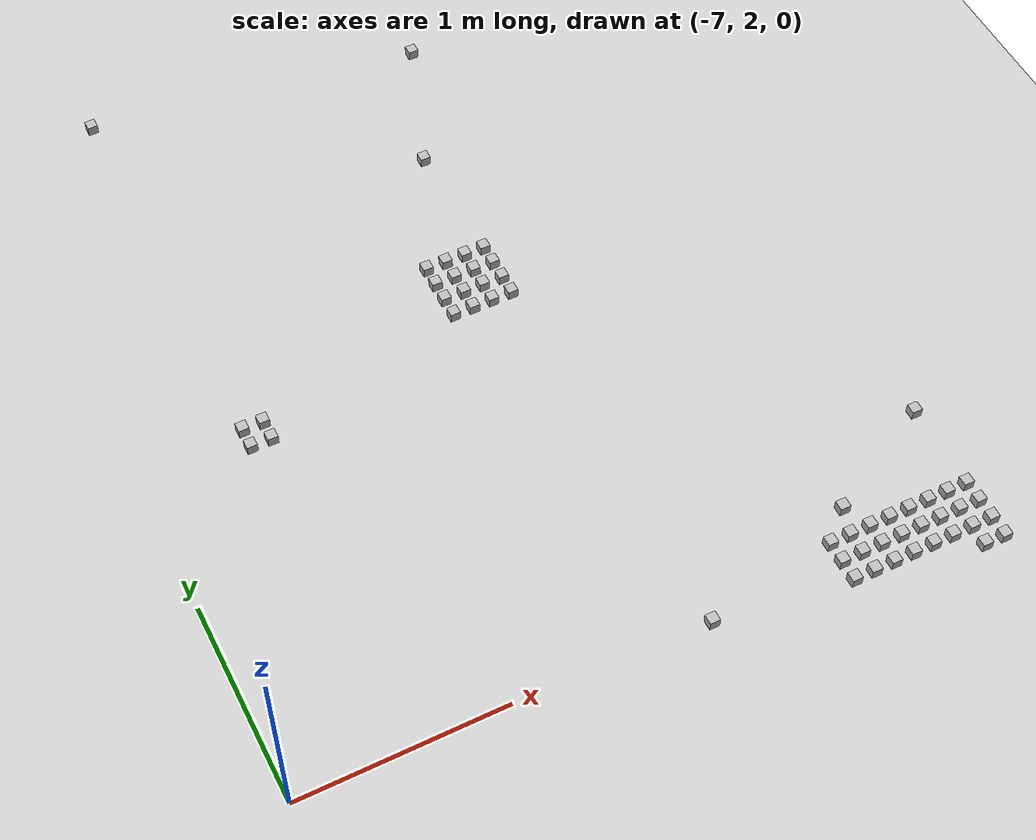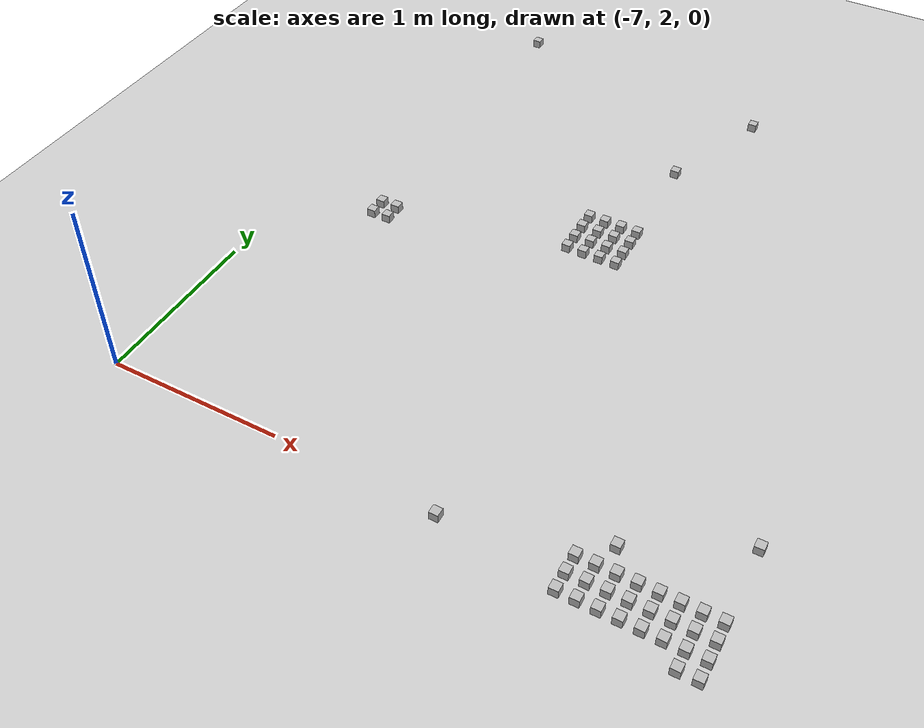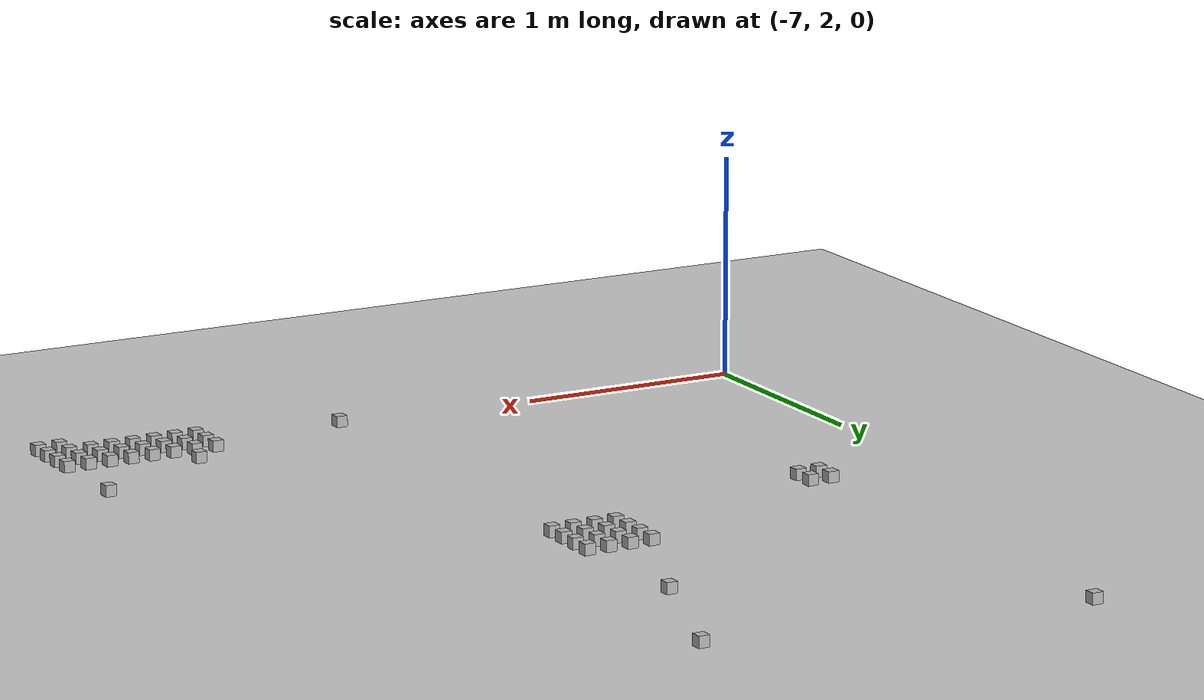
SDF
<sdf version="1.6">
 <world name="default">
  <model name="ground_plane">
   <static>1</static>
   <link name="link">
    <collision name="collision">
     <geometry><plane><normal>0 0 1</normal><size>100 100</size></plane></geometry>
     <surface><friction><ode><mu>100</mu><mu2>50</mu2></ode></friction></surface>
    </collision>
    <visual name="visual">
     <cast_shadows>0</cast_shadows>
     <geometry><plane><normal>0 0 1</normal><size>100 100</size></plane></geometry>
     <material>
      <script><uri>file://media/materials/scripts/gazebo.material</uri><name>Gazebo/Grey</name></script>
     </material>
    </visual>
   </link>
  </model>
  <model name="at38">
   <static>0</static>
   <link name="link">
    <inertial>
     <mass>0.01</mass>
     <inertia><ixx>4e-05</ixx><ixy>0</ixy><ixz>0</ixz><iyy>4e-05</iyy><iyz>0</iyz><izz>4e-05</izz></inertia>
    </inertial>
    <visual name="visual">
     <geometry><box><size>0.05 0.05 0.05</size></box></geometry>
     <material>
      <script>
       <uri>model://at0/materials/scripts</uri>
       <uri>model://at0/materials/textures</uri>
       <name>at0/Diffuse</name>
      </script>
     </material>
    </visual>
    <collision name="collision">
     <geometry><box><size>0.05 0.05 0.05</size></box></geometry>
     <surface><friction><ode><mu>0.8</mu><mu2>0.7</mu2></ode></friction></surface>
    </collision>
   </link>
   <pose>-3.82244 1.77302 0.025 0 -2e-06 0</pose>
  </model>
  <model name="at39">
   <static>0</static>
   <link name="link">
    <inertial>
     <mass>0.01</mass>
     <inertia><ixx>4e-05</ixx><ixy>0</ixy><ixz>0</ixz><iyy>4e-05</iyy><iyz>0</iyz><izz>4e-05</izz></inertia>
    </inertial>
    <visual name="visual">
     <geometry><box><size>0.05 0.05 0.05</size></box></geometry>
     <material>
      <script>
       <uri>model://at0/materials/scripts</uri>
       <uri>model://at0/materials/textures</uri>
       <name>at0/Diffuse</name>
      </script>
     </material>
    </visual>
    <collision name="collision">
     <geometry><box><size>0.05 0.05 0.05</size></box></geometry>
     <surface><friction><ode><mu>0.8</mu><mu2>0.7</mu2></ode></friction></surface>
    </collision>
   </link>
   <pose>-3.72244 1.77302 0.02499 0 2e-06 0</pose>
  </model>
  <model name="at40">
   <static>0</static>
   <link name="link">
    <inertial>
     <mass>0.01</mass>
     <inertia><ixx>4e-05</ixx><ixy>0</ixy><ixz>0</ixz><iyy>4e-05</iyy><iyz>0</iyz><izz>4e-05</izz></inertia>
    </inertial>
    <visual name="visual">
     <geometry><box><size>0.05 0.05 0.05</size></box></geometry>
     <material>
      <script>
       <uri>model://at0/materials/scripts</uri>
       <uri>model://at0/materials/textures</uri>
       <name>at0/Diffuse</name>
      </script>
     </material>
    </visual>
    <collision name="collision">
     <geometry><box><size>0.05 0.05 0.05</size></box></geometry>
     <surface><friction><ode><mu>0.8</mu><mu2>0.7</mu2></ode></friction></surface>
    </collision>
   </link>
   <pose>-4.42244 1.87302 0.02499 0 2e-06 0</pose>
  </model>
  <model name="at41">
   <static>0</static>
   <link name="link">
    <inertial>
     <mass>0.01</mass>
     <inertia><ixx>4e-05</ixx><ixy>0</ixy><ixz>0</ixz><iyy>4e-05</iyy><iyz>0</iyz><izz>4e-05</izz></inertia>
    </inertial>
    <visual name="visual">
     <geometry><box><size>0.05 0.05 0.05</size></box></geometry>
     <material>
      <script>
       <uri>model://at0/materials/scripts</uri>
       <uri>model://at0/materials/textures</uri>
       <name>at0/Diffuse</name>
      </script>
     </material>
    </visual>
    <collision name="collision">
     <geometry><box><size>0.05 0.05 0.05</size></box></geometry>
     <surface><friction><ode><mu>0.8</mu><mu2>0.7</mu2></ode></friction></surface>
    </collision>
   </link>
   <pose>-4.32244 1.87302 0.02499 0 2e-06 0</pose>
  </model>
  <model name="at42">
   <static>0</static>
   <link name="link">
    <inertial>
     <mass>0.01</mass>
     <inertia><ixx>4e-05</ixx><ixy>0</ixy><ixz>0</ixz><iyy>4e-05</iyy><iyz>0</iyz><izz>4e-05</izz></inertia>
    </inertial>
    <visual name="visual">
     <geometry><box><size>0.05 0.05 0.05</size></box></geometry>
     <material>
      <script>
       <uri>model://at0/materials/scripts</uri>
       <uri>model://at0/materials/textures</uri>
       <name>at0/Diffuse</name>
      </script>
     </material>
    </visual>
    <collision name="collision">
     <geometry><box><size>0.05 0.05 0.05</size></box></geometry>
     <surface><friction><ode><mu>0.8</mu><mu2>0.7</mu2></ode></friction></surface>
    </collision>
   </link>
   <pose>-4.22244 1.87302 0.02499 0 2e-06 0</pose>
  </model>
  <model name="at43">
   <static>0</static>
   <link name="link">
    <inertial>
     <mass>0.01</mass>
     <inertia><ixx>4e-05</ixx><ixy>0</ixy><ixz>0</ixz><iyy>4e-05</iyy><iyz>0</iyz><izz>4e-05</izz></inertia>
    </inertial>
    <visual name="visual">
     <geometry><box><size>0.05 0.05 0.05</size></box></geometry>
     <material>
      <script>
       <uri>model://at0/materials/scripts</uri>
       <uri>model://at0/materials/textures</uri>
       <name>at0/Diffuse</name>
      </script>
     </material>
    </visual>
    <collision name="collision">
     <geometry><box><size>0.05 0.05 0.05</size></box></geometry>
     <surface><friction><ode><mu>0.8</mu><mu2>0.7</mu2></ode></friction></surface>
    </collision>
   </link>
   <pose>-4.12244 1.87302 0.02499 0 2e-06 0</pose>
  </model>
  <model name="at44">
   <static>0</static>
   <link name="link">
    <inertial>
     <mass>0.01</mass>
     <inertia><ixx>4e-05</ixx><ixy>0</ixy><ixz>0</ixz><iyy>4e-05</iyy><iyz>0</iyz><izz>4e-05</izz></inertia>
    </inertial>
    <visual name="visual">
     <geometry><box><size>0.05 0.05 0.05</size></box></geometry>
     <material>
      <script>
       <uri>model://at0/materials/scripts</uri>
       <uri>model://at0/materials/textures</uri>
       <name>at0/Diffuse</name>
      </script>
     </material>
    </visual>
    <collision name="collision">
     <geometry><box><size>0.05 0.05 0.05</size></box></geometry>
     <surface><friction><ode><mu>0.8</mu><mu2>0.7</mu2></ode></friction></surface>
    </collision>
   </link>
   <pose>-4.02244 1.87302 0.02499 0 2e-06 0</pose>
  </model>
  <model name="at45">
   <static>0</static>
   <link name="link">
    <inertial>
     <mass>0.01</mass>
     <inertia><ixx>4e-05</ixx><ixy>0</ixy><ixz>0</ixz><iyy>4e-05</iyy><iyz>0</iyz><izz>4e-05</izz></inertia>
    </inertial>
    <visual name="visual">
     <geometry><box><size>0.05 0.05 0.05</size></box></geometry>
     <material>
      <script>
       <uri>model://at0/materials/scripts</uri>
       <uri>model://at0/materials/textures</uri>
       <name>at0/Diffuse</name>
      </script>
     </material>
    </visual>
    <collision name="collision">
     <geometry><box><size>0.05 0.05 0.05</size></box></geometry>
     <surface><friction><ode><mu>0.8</mu><mu2>0.7</mu2></ode></friction></surface>
    </collision>
   </link>
   <pose>-3.92244 1.87302 0.02499 0 2e-06 0</pose>
  </model>
  <model name="at46">
   <static>0</static>
   <link name="link">
    <inertial>
     <mass>0.01</mass>
     <inertia><ixx>4e-05</ixx><ixy>0</ixy><ixz>0</ixz><iyy>4e-05</iyy><iyz>0</iyz><izz>4e-05</izz></inertia>
    </inertial>
    <visual name="visual">
     <geometry><box><size>0.05 0.05 0.05</size></box></geometry>
     <material>
      <script>
       <uri>model://at0/materials/scripts</uri>
       <uri>model://at0/materials/textures</uri>
       <name>at0/Diffuse</name>
      </script>
     </material>
    </visual>
    <collision name="collision">
     <geometry><box><size>0.05 0.05 0.05</size></box></geometry>
     <surface><friction><ode><mu>0.8</mu><mu2>0.7</mu2></ode></friction></surface>
    </collision>
   </link>
   <pose>-3.82244 1.87302 0.025 0 -2e-06 0</pose>
  </model>
  <model name="at47">
   <static>0</static>
   <link name="link">
    <inertial>
     <mass>0.01</mass>
     <inertia><ixx>4e-05</ixx><ixy>0</ixy><ixz>0</ixz><iyy>4e-05</iyy><iyz>0</iyz><izz>4e-05</izz></inertia>
    </inertial>
    <visual name="visual">
     <geometry><box><size>0.05 0.05 0.05</size></box></geometry>
     <material>
      <script>
       <uri>model://at0/materials/scripts</uri>
       <uri>model://at0/materials/textures</uri>
       <name>at0/Diffuse</name>
      </script>
     </material>
    </visual>
    <collision name="collision">
     <geometry><box><size>0.05 0.05 0.05</size></box></geometry>
     <surface><friction><ode><mu>0.8</mu><mu2>0.7</mu2></ode></friction></surface>
    </collision>
   </link>
   <pose>-3.72244 1.87302 0.025 0 -2e-06 0</pose>
  </model>
  <model name="at48">
   <static>0</static>
   <link name="link">
    <inertial>
     <mass>0.01</mass>
     <inertia><ixx>4e-05</ixx><ixy>0</ixy><ixz>0</ixz><iyy>4e-05</iyy><iyz>0</iyz><izz>4e-05</izz></inertia>
    </inertial>
    <visual name="visual">
     <geometry><box><size>0.05 0.05 0.05</size></box></geometry>
     <material>
      <script>
       <uri>model://at0/materials/scripts</uri>
       <uri>model://at0/materials/textures</uri>
       <name>at0/Diffuse</name>
      </script>
     </material>
    </visual>
    <collision name="collision">
     <geometry><box><size>0.05 0.05 0.05</size></box></geometry>
     <surface><friction><ode><mu>0.8</mu><mu2>0.7</mu2></ode></friction></surface>
    </collision>
   </link>
   <pose>-4.42244 1.97302 0.025 0 -2e-06 0</pose>
  </model>
  <model name="at49">
   <static>0</static>
   <link name="link">
    <inertial>
     <mass>0.01</mass>
     <inertia><ixx>4e-05</ixx><ixy>0</ixy><ixz>0</ixz><iyy>4e-05</iyy><iyz>0</iyz><izz>4e-05</izz></inertia>
    </inertial>
    <visual name="visual">
     <geometry><box><size>0.05 0.05 0.05</size></box></geometry>
     <material>
      <script>
       <uri>model://at0/materials/scripts</uri>
       <uri>model://at0/materials/textures</uri>
       <name>at0/Diffuse</name>
      </script>
     </material>
    </visual>
    <collision name="collision">
     <geometry><box><size>0.05 0.05 0.05</size></box></geometry>
     <surface><friction><ode><mu>0.8</mu><mu2>0.7</mu2></ode></friction></surface>
    </collision>
   </link>
   <pose>-4.32244 1.97302 0.02499 0 2e-06 0</pose>
  </model>
  <model name="at50">
   <static>0</static>
   <link name="link">
    <inertial>
     <mass>0.01</mass>
     <inertia><ixx>4e-05</ixx><ixy>0</ixy><ixz>0</ixz><iyy>4e-05</iyy><iyz>0</iyz><izz>4e-05</izz></inertia>
    </inertial>
    <visual name="visual">
     <geometry><box><size>0.05 0.05 0.05</size></box></geometry>
     <material>
      <script>
       <uri>model://at0/materials/scripts</uri>
       <uri>model://at0/materials/textures</uri>
       <name>at0/Diffuse</name>
      </script>
     </material>
    </visual>
    <collision name="collision">
     <geometry><box><size>0.05 0.05 0.05</size></box></geometry>
     <surface><friction><ode><mu>0.8</mu><mu2>0.7</mu2></ode></friction></surface>
    </collision>
   </link>
   <pose>-4.22244 1.97302 0.025 0 -2e-06 0</pose>
  </model>
  <model name="at51">
   <static>0</static>
   <link name="link">
    <inertial>
     <mass>0.01</mass>
     <inertia><ixx>4e-05</ixx><ixy>0</ixy><ixz>0</ixz><iyy>4e-05</iyy><iyz>0</iyz><izz>4e-05</izz></inertia>
    </inertial>
    <visual name="visual">
     <geometry><box><size>0.05 0.05 0.05</size></box></geometry>
     <material>
      <script>
       <uri>model://at0/materials/scripts</uri>
       <uri>model://at0/materials/textures</uri>
       <name>at0/Diffuse</name>
      </script>
     </material>
    </visual>
    <collision name="collision">
     <geometry><box><size>0.05 0.05 0.05</size></box></geometry>
     <surface><friction><ode><mu>0.8</mu><mu2>0.7</mu2></ode></friction></surface>
    </collision>
   </link>
   <pose>-4.12244 1.97302 0.025 0 -2e-06 0</pose>
  </model>
  <model name="at52">
   <static>0</static>
   <link name="link">
    <inertial>
     <mass>0.01</mass>
     <inertia><ixx>4e-05</ixx><ixy>0</ixy><ixz>0</ixz><iyy>4e-05</iyy><iyz>0</iyz><izz>4e-05</izz></inertia>
    </inertial>
    <visual name="visual">
     <geometry><box><size>0.05 0.05 0.05</size></box></geometry>
     <material>
      <script>
       <uri>model://at0/materials/scripts</uri>
       <uri>model://at0/materials/textures</uri>
       <name>at0/Diffuse</name>
      </script>
     </material>
    </visual>
    <collision name="collision">
     <geometry><box><size>0.05 0.05 0.05</size></box></geometry>
     <surface><friction><ode><mu>0.8</mu><mu2>0.7</mu2></ode></friction></surface>
    </collision>
   </link>
   <pose>-4.02244 1.97302 0.02499 0 2e-06 0</pose>
  </model>
  <model name="at53">
   <static>0</static>
   <link name="link">
    <inertial>
     <mass>0.01</mass>
     <inertia><ixx>4e-05</ixx><ixy>0</ixy><ixz>0</ixz><iyy>4e-05</iyy><iyz>0</iyz><izz>4e-05</izz></inertia>
    </inertial>
    <visual name="visual">
     <geometry><box><size>0.05 0.05 0.05</size></box></geometry>
     <material>
      <script>
       <uri>model://at0/materials/scripts</uri>
       <uri>model://at0/materials/textures</uri>
       <name>at0/Diffuse</name>
      </script>
     </material>
    </visual>
    <collision name="collision">
     <geometry><box><size>0.05 0.05 0.05</size></box></geometry>
     <surface><friction><ode><mu>0.8</mu><mu2>0.7</mu2></ode></friction></surface>
    </collision>
   </link>
   <pose>-3.92244 1.97302 0.02499 0 2e-06 0</pose>
  </model>
  <model name="at54">
   <static>0</static>
   <link name="link">
    <inertial>
     <mass>0.01</mass>
     <inertia><ixx>4e-05</ixx><ixy>0</ixy><ixz>0</ixz><iyy>4e-05</iyy><iyz>0</iyz><izz>4e-05</izz></inertia>
    </inertial>
    <visual name="visual">
     <geometry><box><size>0.05 0.05 0.05</size></box></geometry>
     <material>
      <script>
       <uri>model://at0/materials/scripts</uri>
       <uri>model://at0/materials/textures</uri>
       <name>at0/Diffuse</name>
      </script>
     </material>
    </visual>
    <collision name="collision">
     <geometry><box><size>0.05 0.05 0.05</size></box></geometry>
     <surface><friction><ode><mu>0.8</mu><mu2>0.7</mu2></ode></friction></surface>
    </collision>
   </link>
   <pose>-3.82244 1.97302 0.02499 0 2e-06 0</pose>
  </model>
  <model name="at55">
   <static>0</static>
   <link name="link">
    <inertial>
     <mass>0.01</mass>
     <inertia><ixx>4e-05</ixx><ixy>0</ixy><ixz>0</ixz><iyy>4e-05</iyy><iyz>0</iyz><izz>4e-05</izz></inertia>
    </inertial>
    <visual name="visual">
     <geometry><box><size>0.05 0.05 0.05</size></box></geometry>
     <material>
      <script>
       <uri>model://at0/materials/scripts</uri>
       <uri>model://at0/materials/textures</uri>
       <name>at0/Diffuse</name>
      </script>
     </material>
    </visual>
    <collision name="collision">
     <geometry><box><size>0.05 0.05 0.05</size></box></geometry>
     <surface><friction><ode><mu>0.8</mu><mu2>0.7</mu2></ode></friction></surface>
    </collision>
   </link>
   <pose>-3.72244 1.97302 0.025 0 -2e-06 0</pose>
  </model>
  <model name="at56">
   <static>0</static>
   <link name="link">
    <inertial>
     <mass>0.01</mass>
     <inertia><ixx>4e-05</ixx><ixy>0</ixy><ixz>0</ixz><iyy>4e-05</iyy><iyz>0</iyz><izz>4e-05</izz></inertia>
    </inertial>
    <visual name="visual">
     <geometry><box><size>0.05 0.05 0.05</size></box></geometry>
     <material>
      <script>
       <uri>model://at0/materials/scripts</uri>
       <uri>model://at0/materials/textures</uri>
       <name>at0/Diffuse</name>
      </script>
     </material>
    </visual>
    <collision name="collision">
     <geometry><box><size>0.05 0.05 0.05</size></box></geometry>
     <surface><friction><ode><mu>0.8</mu><mu2>0.7</mu2></ode></friction></surface>
    </collision>
   </link>
   <pose>-4.42244 2.07302 0.025 0 -2e-06 0</pose>
  </model>
  <model name="at57">
   <static>0</static>
   <link name="link">
    <inertial>
     <mass>0.01</mass>
     <inertia><ixx>4e-05</ixx><ixy>0</ixy><ixz>0</ixz><iyy>4e-05</iyy><iyz>0</iyz><izz>4e-05</izz></inertia>
    </inertial>
    <visual name="visual">
     <geometry><box><size>0.05 0.05 0.05</size></box></geometry>
     <material>
      <script>
       <uri>model://at0/materials/scripts</uri>
       <uri>model://at0/materials/textures</uri>
       <name>at0/Diffuse</name>
      </script>
     </material>
    </visual>
    <collision name="collision">
     <geometry><box><size>0.05 0.05 0.05</size></box></geometry>
     <surface><friction><ode><mu>0.8</mu><mu2>0.7</mu2></ode></friction></surface>
    </collision>
   </link>
   <pose>-4.32244 2.07302 0.025 0 -2e-06 0</pose>
  </model>
  <model name="at58">
   <static>0</static>
   <link name="link">
    <inertial>
     <mass>0.01</mass>
     <inertia><ixx>4e-05</ixx><ixy>0</ixy><ixz>0</ixz><iyy>4e-05</iyy><iyz>0</iyz><izz>4e-05</izz></inertia>
    </inertial>
    <visual name="visual">
     <geometry><box><size>0.05 0.05 0.05</size></box></geometry>
     <material>
      <script>
       <uri>model://at0/materials/scripts</uri>
       <uri>model://at0/materials/textures</uri>
       <name>at0/Diffuse</name>
      </script>
     </material>
    </visual>
    <collision name="collision">
     <geometry><box><size>0.05 0.05 0.05</size></box></geometry>
     <surface><friction><ode><mu>0.8</mu><mu2>0.7</mu2></ode></friction></surface>
    </collision>
   </link>
   <pose>-4.22244 2.07302 0.02499 0 2e-06 0</pose>
  </model>
  <model name="at59">
   <static>0</static>
   <link name="link">
    <inertial>
     <mass>0.01</mass>
     <inertia><ixx>4e-05</ixx><ixy>0</ixy><ixz>0</ixz><iyy>4e-05</iyy><iyz>0</iyz><izz>4e-05</izz></inertia>
    </inertial>
    <visual name="visual">
     <geometry><box><size>0.05 0.05 0.05</size></box></geometry>
     <material>
      <script>
       <uri>model://at0/materials/scripts</uri>
       <uri>model://at0/materials/textures</uri>
       <name>at0/Diffuse</name>
      </script>
     </material>
    </visual>
    <collision name="collision">
     <geometry><box><size>0.05 0.05 0.05</size></box></geometry>
     <surface><friction><ode><mu>0.8</mu><mu2>0.7</mu2></ode></friction></surface>
    </collision>
   </link>
   <pose>-4.12244 2.07302 0.02499 0 2e-06 0</pose>
  </model>
  <model name="at60">
   <static>0</static>
   <link name="link">
    <inertial>
     <mass>0.01</mass>
     <inertia><ixx>4e-05</ixx><ixy>0</ixy><ixz>0</ixz><iyy>4e-05</iyy><iyz>0</iyz><izz>4e-05</izz></inertia>
    </inertial>
    <visual name="visual">
     <geometry><box><size>0.05 0.05 0.05</size></box></geometry>
     <material>
      <script>
       <uri>model://at0/materials/scripts</uri>
       <uri>model://at0/materials/textures</uri>
       <name>at0/Diffuse</name>
      </script>
     </material>
    </visual>
    <collision name="collision">
     <geometry><box><size>0.05 0.05 0.05</size></box></geometry>
     <surface><friction><ode><mu>0.8</mu><mu2>0.7</mu2></ode></friction></surface>
    </collision>
   </link>
   <pose>-4.02244 2.07302 0.02499 0 2e-06 0</pose>
  </model>
  <model name="at61">
   <static>0</static>
   <link name="link">
    <inertial>
     <mass>0.01</mass>
     <inertia><ixx>4e-05</ixx><ixy>0</ixy><ixz>0</ixz><iyy>4e-05</iyy><iyz>0</iyz><izz>4e-05</izz></inertia>
    </inertial>
    <visual name="visual">
     <geometry><box><size>0.05 0.05 0.05</size></box></geometry>
     <material>
      <script>
       <uri>model://at0/materials/scripts</uri>
       <uri>model://at0/materials/textures</uri>
       <name>at0/Diffuse</name>
      </script>
     </material>
    </visual>
    <collision name="collision">
     <geometry><box><size>0.05 0.05 0.05</size></box></geometry>
     <surface><friction><ode><mu>0.8</mu><mu2>0.7</mu2></ode></friction></surface>
    </collision>
   </link>
   <pose>-3.92244 2.07302 0.025 0 -2e-06 0</pose>
  </model>
  <model name="at62">
   <static>0</static>
   <link name="link">
    <inertial>
     <mass>0.01</mass>
     <inertia><ixx>4e-05</ixx><ixy>0</ixy><ixz>0</ixz><iyy>4e-05</iyy><iyz>0</iyz><izz>4e-05</izz></inertia>
    </inertial>
    <visual name="visual">
     <geometry><box><size>0.05 0.05 0.05</size></box></geometry>
     <material>
      <script>
       <uri>model://at0/materials/scripts</uri>
       <uri>model://at0/materials/textures</uri>
       <name>at0/Diffuse</name>
      </script>
     </material>
    </visual>
    <collision name="collision">
     <geometry><box><size>0.05 0.05 0.05</size></box></geometry>
     <surface><friction><ode><mu>0.8</mu><mu2>0.7</mu2></ode></friction></surface>
    </collision>
   </link>
   <pose>-3.82244 2.07302 0.02499 0 2e-06 0</pose>
  </model>
  <model name="at63">
   <static>0</static>
   <link name="link">
    <inertial>
     <mass>0.01</mass>
     <inertia><ixx>4e-05</ixx><ixy>0</ixy><ixz>0</ixz><iyy>4e-05</iyy><iyz>0</iyz><izz>4e-05</izz></inertia>
    </inertial>
    <visual name="visual">
     <geometry><box><size>0.05 0.05 0.05</size></box></geometry>
     <material>
      <script>
       <uri>model://at0/materials/scripts</uri>
       <uri>model://at0/materials/textures</uri>
       <name>at0/Diffuse</name>
      </script>
     </material>
    </visual>
    <collision name="collision">
     <geometry><box><size>0.05 0.05 0.05</size></box></geometry>
     <surface><friction><ode><mu>0.8</mu><mu2>0.7</mu2></ode></friction></surface>
    </collision>
   </link>
   <pose>-3.72244 2.07302 0.02499 0 2e-06 0</pose>
  </model>
  <model name="at80">
   <static>0</static>
   <link name="link">
    <inertial>
     <mass>0.01</mass>
     <inertia><ixx>4e-05</ixx><ixy>0</ixy><ixz>0</ixz><iyy>4e-05</iyy><iyz>0</iyz><izz>4e-05</izz></inertia>
    </inertial>
    <visual name="visual">
     <geometry><box><size>0.05 0.05 0.05</size></box></geometry>
     <material>
      <script>
       <uri>model://at0/materials/scripts</uri>
       <uri>model://at0/materials/textures</uri>
       <name>at0/Diffuse</name>
      </script>
     </material>
    </visual>
    <collision name="collision">
     <geometry><box><size>0.05 0.05 0.05</size></box></geometry>
     <surface><friction><ode><mu>0.8</mu><mu2>0.7</mu2></ode></friction></surface>
    </collision>
   </link>
   <pose>-5.35142 3.93183 0.025 0 -2e-06 0</pose>
  </model>
  <model name="at81">
   <static>0</static>
   <link name="link">
    <inertial>
     <mass>0.01</mass>
     <inertia><ixx>4e-05</ixx><ixy>0</ixy><ixz>0</ixz><iyy>4e-05</iyy><iyz>0</iyz><izz>4e-05</izz></inertia>
    </inertial>
    <visual name="visual">
     <geometry><box><size>0.05 0.05 0.05</size></box></geometry>
     <material>
      <script>
       <uri>model://at0/materials/scripts</uri>
       <uri>model://at0/materials/textures</uri>
       <name>at0/Diffuse</name>
      </script>
     </material>
    </visual>
    <collision name="collision">
     <geometry><box><size>0.05 0.05 0.05</size></box></geometry>
     <surface><friction><ode><mu>0.8</mu><mu2>0.7</mu2></ode></friction></surface>
    </collision>
   </link>
   <pose>-5.25142 3.93183 0.025 0 -2e-06 0</pose>
  </model>
  <model name="at82">
   <static>0</static>
   <link name="link">
    <inertial>
     <mass>0.01</mass>
     <inertia><ixx>4e-05</ixx><ixy>0</ixy><ixz>0</ixz><iyy>4e-05</iyy><iyz>0</iyz><izz>4e-05</izz></inertia>
    </inertial>
    <visual name="visual">
     <geometry><box><size>0.05 0.05 0.05</size></box></geometry>
     <material>
      <script>
       <uri>model://at0/materials/scripts</uri>
       <uri>model://at0/materials/textures</uri>
       <name>at0/Diffuse</name>
      </script>
     </material>
    </visual>
    <collision name="collision">
     <geometry><box><size>0.05 0.05 0.05</size></box></geometry>
     <surface><friction><ode><mu>0.8</mu><mu2>0.7</mu2></ode></friction></surface>
    </collision>
   </link>
   <pose>-5.15142 3.93183 0.025 0 -2e-06 0</pose>
  </model>
  <model name="at83">
   <static>0</static>
   <link name="link">
    <inertial>
     <mass>0.01</mass>
     <inertia><ixx>4e-05</ixx><ixy>0</ixy><ixz>0</ixz><iyy>4e-05</iyy><iyz>0</iyz><izz>4e-05</izz></inertia>
    </inertial>
    <visual name="visual">
     <geometry><box><size>0.05 0.05 0.05</size></box></geometry>
     <material>
      <script>
       <uri>model://at0/materials/scripts</uri>
       <uri>model://at0/materials/textures</uri>
       <name>at0/Diffuse</name>
      </script>
     </material>
    </visual>
    <collision name="collision">
     <geometry><box><size>0.05 0.05 0.05</size></box></geometry>
     <surface><friction><ode><mu>0.8</mu><mu2>0.7</mu2></ode></friction></surface>
    </collision>
   </link>
   <pose>-5.05142 3.93183 0.025 0 -2e-06 0</pose>
  </model>
  <model name="at84">
   <static>0</static>
   <link name="link">
    <inertial>
     <mass>0.01</mass>
     <inertia><ixx>4e-05</ixx><ixy>0</ixy><ixz>0</ixz><iyy>4e-05</iyy><iyz>0</iyz><izz>4e-05</izz></inertia>
    </inertial>
    <visual name="visual">
     <geometry><box><size>0.05 0.05 0.05</size></box></geometry>
     <material>
      <script>
       <uri>model://at0/materials/scripts</uri>
       <uri>model://at0/materials/textures</uri>
       <name>at0/Diffuse</name>
      </script>
     </material>
    </visual>
    <collision name="collision">
     <geometry><box><size>0.05 0.05 0.05</size></box></geometry>
     <surface><friction><ode><mu>0.8</mu><mu2>0.7</mu2></ode></friction></surface>
    </collision>
   </link>
   <pose>-5.35142 4.03183 0.02499 0 2e-06 0</pose>
  </model>
  <model name="at85">
   <static>0</static>
   <link name="link">
    <inertial>
     <mass>0.01</mass>
     <inertia><ixx>4e-05</ixx><ixy>0</ixy><ixz>0</ixz><iyy>4e-05</iyy><iyz>0</iyz><izz>4e-05</izz></inertia>
    </inertial>
    <visual name="visual">
     <geometry><box><size>0.05 0.05 0.05</size></box></geometry>
     <material>
      <script>
       <uri>model://at0/materials/scripts</uri>
       <uri>model://at0/materials/textures</uri>
       <name>at0/Diffuse</name>
      </script>
     </material>
    </visual>
    <collision name="collision">
     <geometry><box><size>0.05 0.05 0.05</size></box></geometry>
     <surface><friction><ode><mu>0.8</mu><mu2>0.7</mu2></ode></friction></surface>
    </collision>
   </link>
   <pose>-5.25142 4.03183 0.025 0 -2e-06 0</pose>
  </model>
  <model name="at86">
   <static>0</static>
   <link name="link">
    <inertial>
     <mass>0.01</mass>
     <inertia><ixx>4e-05</ixx><ixy>0</ixy><ixz>0</ixz><iyy>4e-05</iyy><iyz>0</iyz><izz>4e-05</izz></inertia>
    </inertial>
    <visual name="visual">
     <geometry><box><size>0.05 0.05 0.05</size></box></geometry>
     <material>
      <script>
       <uri>model://at0/materials/scripts</uri>
       <uri>model://at0/materials/textures</uri>
       <name>at0/Diffuse</name>
      </script>
     </material>
    </visual>
    <collision name="collision">
     <geometry><box><size>0.05 0.05 0.05</size></box></geometry>
     <surface><friction><ode><mu>0.8</mu><mu2>0.7</mu2></ode></friction></surface>
    </collision>
   </link>
   <pose>-5.15142 4.03183 0.025 0 -2e-06 0</pose>
  </model>
  <model name="at87">
   <static>0</static>
   <link name="link">
    <inertial>
     <mass>0.01</mass>
     <inertia><ixx>4e-05</ixx><ixy>0</ixy><ixz>0</ixz><iyy>4e-05</iyy><iyz>0</iyz><izz>4e-05</izz></inertia>
    </inertial>
    <visual name="visual">
     <geometry><box><size>0.05 0.05 0.05</size></box></geometry>
     <material>
      <script>
       <uri>model://at0/materials/scripts</uri>
       <uri>model://at0/materials/textures</uri>
       <name>at0/Diffuse</name>
      </script>
     </material>
    </visual>
    <collision name="collision">
     <geometry><box><size>0.05 0.05 0.05</size></box></geometry>
     <surface><friction><ode><mu>0.8</mu><mu2>0.7</mu2></ode></friction></surface>
    </collision>
   </link>
   <pose>-5.05142 4.03183 0.025 0 -2e-06 0</pose>
  </model>
  <model name="at88">
   <static>0</static>
   <link name="link">
    <inertial>
     <mass>0.01</mass>
     <inertia><ixx>4e-05</ixx><ixy>0</ixy><ixz>0</ixz><iyy>4e-05</iyy><iyz>0</iyz><izz>4e-05</izz></inertia>
    </inertial>
    <visual name="visual">
     <geometry><box><size>0.05 0.05 0.05</size></box></geometry>
     <material>
      <script>
       <uri>model://at0/materials/scripts</uri>
       <uri>model://at0/materials/textures</uri>
       <name>at0/Diffuse</name>
      </script>
     </material>
    </visual>
    <collision name="collision">
     <geometry><box><size>0.05 0.05 0.05</size></box></geometry>
     <surface><friction><ode><mu>0.8</mu><mu2>0.7</mu2></ode></friction></surface>
    </collision>
   </link>
   <pose>-5.35142 4.13183 0.02499 0 2e-06 0</pose>
  </model>
  <model name="at89">
   <static>0</static>
   <link name="link">
    <inertial>
     <mass>0.01</mass>
     <inertia><ixx>4e-05</ixx><ixy>0</ixy><ixz>0</ixz><iyy>4e-05</iyy><iyz>0</iyz><izz>4e-05</izz></inertia>
    </inertial>
    <visual name="visual">
     <geometry><box><size>0.05 0.05 0.05</size></box></geometry>
     <material>
      <script>
       <uri>model://at0/materials/scripts</uri>
       <uri>model://at0/materials/textures</uri>
       <name>at0/Diffuse</name>
      </script>
     </material>
    </visual>
    <collision name="collision">
     <geometry><box><size>0.05 0.05 0.05</size></box></geometry>
     <surface><friction><ode><mu>0.8</mu><mu2>0.7</mu2></ode></friction></surface>
    </collision>
   </link>
   <pose>-5.25142 4.13183 0.025 0 -2e-06 0</pose>
  </model>
  <model name="at90">
   <static>0</static>
   <link name="link">
    <inertial>
     <mass>0.01</mass>
     <inertia><ixx>4e-05</ixx><ixy>0</ixy><ixz>0</ixz><iyy>4e-05</iyy><iyz>0</iyz><izz>4e-05</izz></inertia>
    </inertial>
    <visual name="visual">
     <geometry><box><size>0.05 0.05 0.05</size></box></geometry>
     <material>
      <script>
       <uri>model://at0/materials/scripts</uri>
       <uri>model://at0/materials/textures</uri>
       <name>at0/Diffuse</name>
      </script>
     </material>
    </visual>
    <collision name="collision">
     <geometry><box><size>0.05 0.05 0.05</size></box></geometry>
     <surface><friction><ode><mu>0.8</mu><mu2>0.7</mu2></ode></friction></surface>
    </collision>
   </link>
   <pose>-5.15142 4.13183 0.025 0 -2e-06 0</pose>
  </model>
  <model name="at91">
   <static>0</static>
   <link name="link">
    <inertial>
     <mass>0.01</mass>
     <inertia><ixx>4e-05</ixx><ixy>0</ixy><ixz>0</ixz><iyy>4e-05</iyy><iyz>0</iyz><izz>4e-05</izz></inertia>
    </inertial>
    <visual name="visual">
     <geometry><box><size>0.05 0.05 0.05</size></box></geometry>
     <material>
      <script>
       <uri>model://at0/materials/scripts</uri>
       <uri>model://at0/materials/textures</uri>
       <name>at0/Diffuse</name>
      </script>
     </material>
    </visual>
    <collision name="collision">
     <geometry><box><size>0.05 0.05 0.05</size></box></geometry>
     <surface><friction><ode><mu>0.8</mu><mu2>0.7</mu2></ode></friction></surface>
    </collision>
   </link>
   <pose>-5.05142 4.13183 0.025 0 -2e-06 0</pose>
  </model>
  <model name="at92">
   <static>0</static>
   <link name="link">
    <inertial>
     <mass>0.01</mass>
     <inertia><ixx>4e-05</ixx><ixy>0</ixy><ixz>0</ixz><iyy>4e-05</iyy><iyz>0</iyz><izz>4e-05</izz></inertia>
    </inertial>
    <visual name="visual">
     <geometry><box><size>0.05 0.05 0.05</size></box></geometry>
     <material>
      <script>
       <uri>model://at0/materials/scripts</uri>
       <uri>model://at0/materials/textures</uri>
       <name>at0/Diffuse</name>
      </script>
     </material>
    </visual>
    <collision name="collision">
     <geometry><box><size>0.05 0.05 0.05</size></box></geometry>
     <surface><friction><ode><mu>0.8</mu><mu2>0.7</mu2></ode></friction></surface>
    </collision>
   </link>
   <pose>-5.35142 4.23183 0.025 0 -2e-06 0</pose>
  </model>
  <model name="at93">
   <static>0</static>
   <link name="link">
    <inertial>
     <mass>0.01</mass>
     <inertia><ixx>4e-05</ixx><ixy>0</ixy><ixz>0</ixz><iyy>4e-05</iyy><iyz>0</iyz><izz>4e-05</izz></inertia>
    </inertial>
    <visual name="visual">
     <geometry><box><size>0.05 0.05 0.05</size></box></geometry>
     <material>
      <script>
       <uri>model://at0/materials/scripts</uri>
       <uri>model://at0/materials/textures</uri>
       <name>at0/Diffuse</name>
      </script>
     </material>
    </visual>
    <collision name="collision">
     <geometry><box><size>0.05 0.05 0.05</size></box></geometry>
     <surface><friction><ode><mu>0.8</mu><mu2>0.7</mu2></ode></friction></surface>
    </collision>
   </link>
   <pose>-5.25142 4.23183 0.02499 0 2e-06 0</pose>
  </model>
  <model name="at94">
   <static>0</static>
   <link name="link">
    <inertial>
     <mass>0.01</mass>
     <inertia><ixx>4e-05</ixx><ixy>0</ixy><ixz>0</ixz><iyy>4e-05</iyy><iyz>0</iyz><izz>4e-05</izz></inertia>
    </inertial>
    <visual name="visual">
     <geometry><box><size>0.05 0.05 0.05</size></box></geometry>
     <material>
      <script>
       <uri>model://at0/materials/scripts</uri>
       <uri>model://at0/materials/textures</uri>
       <name>at0/Diffuse</name>
      </script>
     </material>
    </visual>
    <collision name="collision">
     <geometry><box><size>0.05 0.05 0.05</size></box></geometry>
     <surface><friction><ode><mu>0.8</mu><mu2>0.7</mu2></ode></friction></surface>
    </collision>
   </link>
   <pose>-5.15142 4.23183 0.02499 0 2e-06 0</pose>
  </model>
  <model name="at95">
   <static>0</static>
   <link name="link">
    <inertial>
     <mass>0.01</mass>
     <inertia><ixx>4e-05</ixx><ixy>0</ixy><ixz>0</ixz><iyy>4e-05</iyy><iyz>0</iyz><izz>4e-05</izz></inertia>
    </inertial>
    <visual name="visual">
     <geometry><box><size>0.05 0.05 0.05</size></box></geometry>
     <material>
      <script>
       <uri>model://at0/materials/scripts</uri>
       <uri>model://at0/materials/textures</uri>
       <name>at0/Diffuse</name>
      </script>
     </material>
    </visual>
    <collision name="collision">
     <geometry><box><size>0.05 0.05 0.05</size></box></geometry>
     <surface><friction><ode><mu>0.8</mu><mu2>0.7</mu2></ode></friction></surface>
    </collision>
   </link>
   <pose>-5.05142 4.23183 0.02499 0 2e-06 0</pose>
  </model>
  <model name="at164">
   <static>0</static>
   <link name="link">
    <inertial>
     <mass>0.01</mass>
     <inertia><ixx>4e-05</ixx><ixy>0</ixy><ixz>0</ixz><iyy>4e-05</iyy><iyz>0</iyz><izz>4e-05</izz></inertia>
    </inertial>
    <visual name="visual">
     <geometry><box><size>0.05 0.05 0.05</size></box></geometry>
     <material>
      <script>
       <uri>model://at0/materials/scripts</uri>
       <uri>model://at0/materials/textures</uri>
       <name>at0/Diffuse</name>
      </script>
     </material>
    </visual>
    <collision name="collision">
     <geometry><box><size>0.05 0.05 0.05</size></box></geometry>
     <surface><friction><ode><mu>0.8</mu><mu2>0.7</mu2></ode></friction></surface>
    </collision>
   </link>
   <pose>-6.48602 3.66266 0.02499 0 2e-06 0</pose>
  </model>
  <model name="at165">
   <static>0</static>
   <link name="link">
    <inertial>
     <mass>0.01</mass>
     <inertia><ixx>4e-05</ixx><ixy>0</ixy><ixz>0</ixz><iyy>4e-05</iyy><iyz>0</iyz><izz>4e-05</izz></inertia>
    </inertial>
    <visual name="visual">
     <geometry><box><size>0.05 0.05 0.05</size></box></geometry>
     <material>
      <script>
       <uri>model://at0/materials/scripts</uri>
       <uri>model://at0/materials/textures</uri>
       <name>at0/Diffuse</name>
      </script>
     </material>
    </visual>
    <collision name="collision">
     <geometry><box><size>0.05 0.05 0.05</size></box></geometry>
     <surface><friction><ode><mu>0.8</mu><mu2>0.7</mu2></ode></friction></surface>
    </collision>
   </link>
   <pose>-6.38602 3.66266 0.02499 0 2e-06 0</pose>
  </model>
  <model name="at166">
   <static>0</static>
   <link name="link">
    <inertial>
     <mass>0.01</mass>
     <inertia><ixx>4e-05</ixx><ixy>0</ixy><ixz>0</ixz><iyy>4e-05</iyy><iyz>0</iyz><izz>4e-05</izz></inertia>
    </inertial>
    <visual name="visual">
     <geometry><box><size>0.05 0.05 0.05</size></box></geometry>
     <material>
      <script>
       <uri>model://at0/materials/scripts</uri>
       <uri>model://at0/materials/textures</uri>
       <name>at0/Diffuse</name>
      </script>
     </material>
    </visual>
    <collision name="collision">
     <geometry><box><size>0.05 0.05 0.05</size></box></geometry>
     <surface><friction><ode><mu>0.8</mu><mu2>0.7</mu2></ode></friction></surface>
    </collision>
   </link>
   <pose>-6.48602 3.76266 0.02499 0 2e-06 0</pose>
  </model>
  <model name="at167">
   <static>0</static>
   <link name="link">
    <inertial>
     <mass>0.01</mass>
     <inertia><ixx>4e-05</ixx><ixy>0</ixy><ixz>0</ixz><iyy>4e-05</iyy><iyz>0</iyz><izz>4e-05</izz></inertia>
    </inertial>
    <visual name="visual">
     <geometry><box><size>0.05 0.05 0.05</size></box></geometry>
     <material>
      <script>
       <uri>model://at0/materials/scripts</uri>
       <uri>model://at0/materials/textures</uri>
       <name>at0/Diffuse</name>
      </script>
     </material>
    </visual>
    <collision name="collision">
     <geometry><box><size>0.05 0.05 0.05</size></box></geometry>
     <surface><friction><ode><mu>0.8</mu><mu2>0.7</mu2></ode></friction></surface>
    </collision>
   </link>
   <pose>-6.38602 3.76266 0.02499 0 2e-06 0</pose>
  </model>
  <model name="at198">
   <static>0</static>
   <link name="link">
    <inertial>
     <mass>0.01</mass>
     <inertia><ixx>4e-05</ixx><ixy>0</ixy><ixz>0</ixz><iyy>4e-05</iyy><iyz>0</iyz><izz>4e-05</izz></inertia>
    </inertial>
    <visual name="visual">
     <geometry><box><size>0.05 0.05 0.05</size></box></geometry>
     <material>
      <script>
       <uri>model://at0/materials/scripts</uri>
       <uri>model://at0/materials/textures</uri>
       <name>at0/Diffuse</name>
      </script>
     </material>
    </visual>
    <collision name="collision">
     <geometry><box><size>0.05 0.05 0.05</size></box></geometry>
     <surface><friction><ode><mu>0.8</mu><mu2>0.7</mu2></ode></friction></surface>
    </collision>
   </link>
   <pose>-5.07302 1.96439 0.025 0 -2e-06 0</pose>
  </model>
  <model name="at212">
   <static>0</static>
   <link name="link">
    <inertial>
     <mass>0.01</mass>
     <inertia><ixx>4e-05</ixx><ixy>0</ixy><ixz>0</ixz><iyy>4e-05</iyy><iyz>0</iyz><izz>4e-05</izz></inertia>
    </inertial>
    <visual name="visual">
     <geometry><box><size>0.05 0.05 0.05</size></box></geometry>
     <material>
      <script>
       <uri>model://at0/materials/scripts</uri>
       <uri>model://at0/materials/textures</uri>
       <name>at0/Diffuse</name>
      </script>
     </material>
    </visual>
    <collision name="collision">
     <geometry><box><size>0.05 0.05 0.05</size></box></geometry>
     <surface><friction><ode><mu>0.8</mu><mu2>0.7</mu2></ode></friction></surface>
    </collision>
   </link>
   <pose>-4.27961 2.20562 0.02499 0 2e-06 0</pose>
  </model>
  <model name="at224">
   <static>0</static>
   <link name="link">
    <inertial>
     <mass>0.01</mass>
     <inertia><ixx>4e-05</ixx><ixy>0</ixy><ixz>0</ixz><iyy>4e-05</iyy><iyz>0</iyz><izz>4e-05</izz></inertia>
    </inertial>
    <visual name="visual">
     <geometry><box><size>0.05 0.05 0.05</size></box></geometry>
     <material>
      <script>
       <uri>model://at0/materials/scripts</uri>
       <uri>model://at0/materials/textures</uri>
       <name>at0/Diffuse</name>
      </script>
     </material>
    </visual>
    <collision name="collision">
     <geometry><box><size>0.05 0.05 0.05</size></box></geometry>
     <surface><friction><ode><mu>0.8</mu><mu2>0.7</mu2></ode></friction></surface>
    </collision>
   </link>
   <pose>-3.71803 2.50305 0.02499 0 2e-06 0</pose>
  </model>
  <model name="at249">
   <static>0</static>
   <link name="link">
    <inertial>
     <mass>0.01</mass>
     <inertia><ixx>4e-05</ixx><ixy>0</ixy><ixz>0</ixz><iyy>4e-05</iyy><iyz>0</iyz><izz>4e-05</izz></inertia>
    </inertial>
    <visual name="visual">
     <geometry><box><size>0.05 0.05 0.05</size></box></geometry>
     <material>
      <script>
       <uri>model://at0/materials/scripts</uri>
       <uri>model://at0/materials/textures</uri>
       <name>at0/Diffuse</name>
      </script>
     </material>
    </visual>
    <collision name="collision">
     <geometry><box><size>0.05 0.05 0.05</size></box></geometry>
     <surface><friction><ode><mu>0.8</mu><mu2>0.7</mu2></ode></friction></surface>
    </collision>
   </link>
   <pose>-5.06942 4.86891 0.02499 0 2e-06 0</pose>
  </model>
  <model name="at250">
   <static>0</static>
   <link name="link">
    <inertial>
     <mass>0.01</mass>
     <inertia><ixx>4e-05</ixx><ixy>0</ixy><ixz>0</ixz><iyy>4e-05</iyy><iyz>0</iyz><izz>4e-05</izz></inertia>
    </inertial>
    <visual name="visual">
     <geometry><box><size>0.05 0.05 0.05</size></box></geometry>
     <material>
      <script>
       <uri>model://at0/materials/scripts</uri>
       <uri>model://at0/materials/textures</uri>
       <name>at0/Diffuse</name>
      </script>
     </material>
    </visual>
    <collision name="collision">
     <geometry><box><size>0.05 0.05 0.05</size></box></geometry>
     <surface><friction><ode><mu>0.8</mu><mu2>0.7</mu2></ode></friction></surface>
    </collision>
   </link>
   <pose>-6.47139 5.79725 0.02499 0 2e-06 0</pose>
  </model>
  <model name="at251">
   <static>0</static>
   <link name="link">
    <inertial>
     <mass>0.01</mass>
     <inertia><ixx>4e-05</ixx><ixy>0</ixy><ixz>0</ixz><iyy>4e-05</iyy><iyz>0</iyz><izz>4e-05</izz></inertia>
    </inertial>
    <visual name="visual">
     <geometry><box><size>0.05 0.05 0.05</size></box></geometry>
     <material>
      <script>
       <uri>model://at0/materials/scripts</uri>
       <uri>model://at0/materials/textures</uri>
       <name>at0/Diffuse</name>
      </script>
     </material>
    </visual>
    <collision name="collision">
     <geometry><box><size>0.05 0.05 0.05</size></box></geometry>
     <surface><friction><ode><mu>0.8</mu><mu2>0.7</mu2></ode></friction></surface>
    </collision>
   </link>
   <pose>-4.81702 5.55973 0.025 0 -2e-06 0</pose>
  </model>
 </world>
</sdf>
